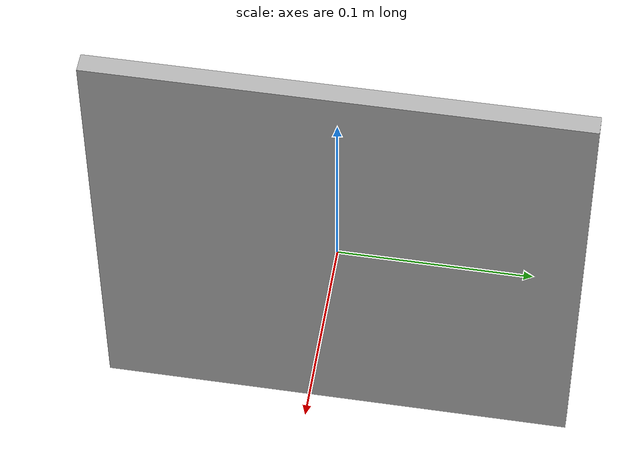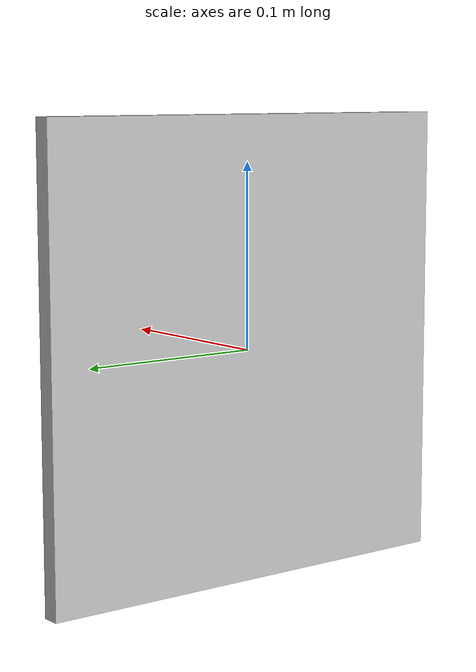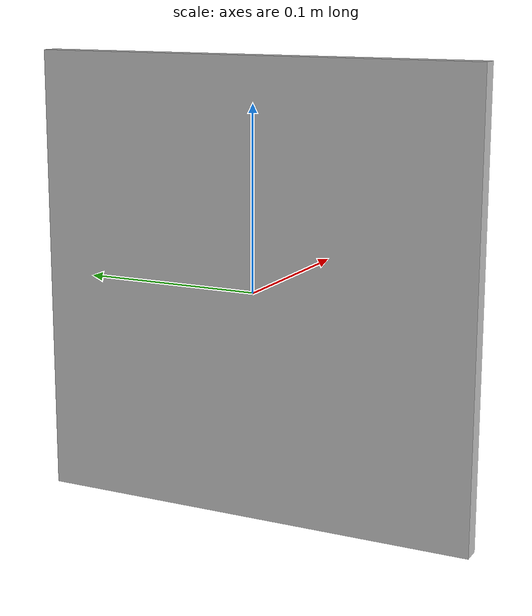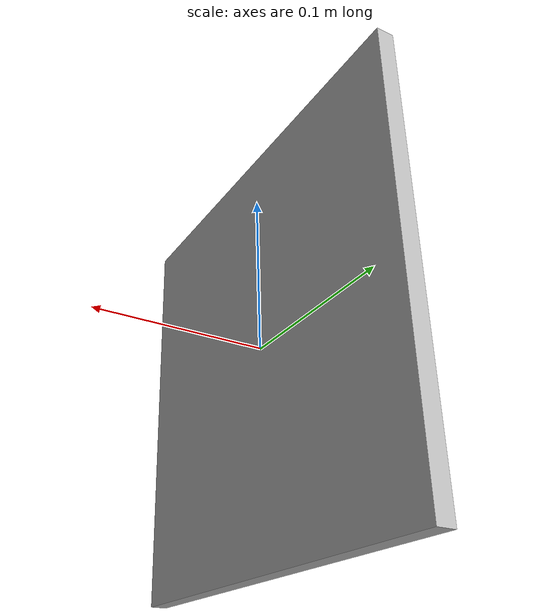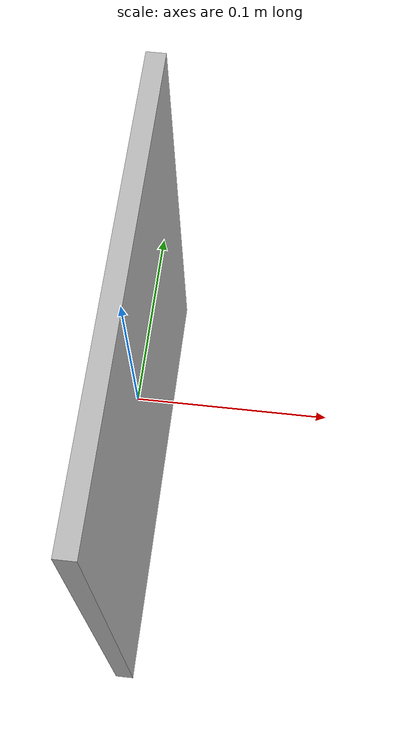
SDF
<?xml version="1.0"?>
<sdf version="1.6">
  <model name="aruco_marker">
    <static>true</static>
    <link name="link">
      <pose>0 0 0 0 0 0</pose>

      <!-- Thin plate: 1 cm deep, 25 cm square. The large faces are +/-x,
           so the marker is read out of the model's -x face. -->
      <collision name="collision">
        <geometry>
          <box><size>0.01 0.25 0.25</size></box>
        </geometry>
      </collision>

      <visual name="visual">
        <geometry>
          <box><size>0.01 0.25 0.25</size></box>
        </geometry>
        <material>
          <script>
            <uri>model://aruco_marker/materials/scripts</uri>
            <uri>model://aruco_marker/materials/textures</uri>
            <name>ArucoMarker/Marker</name>
          </script>
        </material>
      </visual>
    </link>
  </model>
</sdf>
